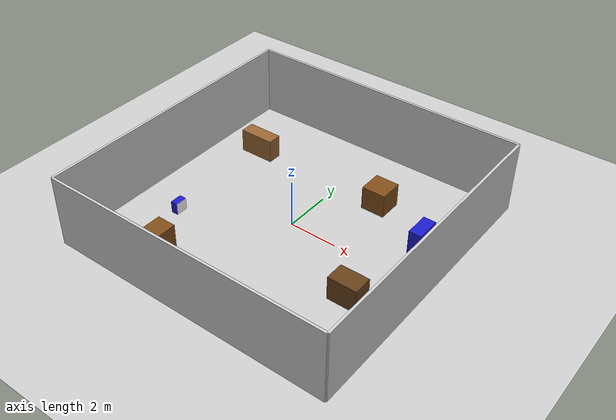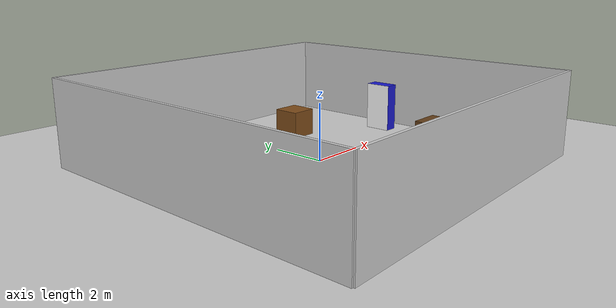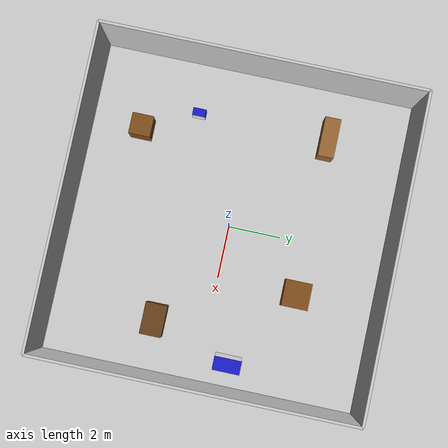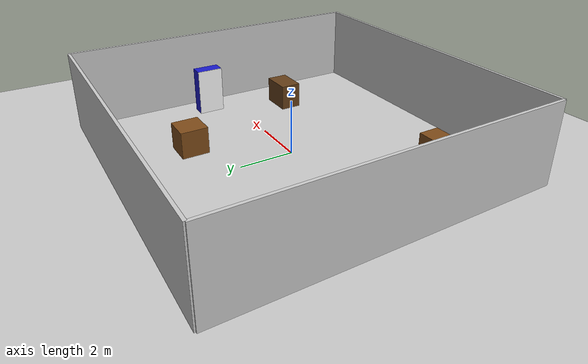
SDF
<?xml version="1.0"?>
<sdf version="1.6">
  <world name="default">

    <plugin
      filename="gz-sim-physics-system"
      name="gz::sim::systems::Physics">
    </plugin>
    <plugin
      filename="gz-sim-user-commands-system"
      name="gz::sim::systems::UserCommands">
    </plugin>
    <plugin
      filename="gz-sim-scene-broadcaster-system"
      name="gz::sim::systems::SceneBroadcaster">
    </plugin>
    <plugin
      filename="gz-sim-sensors-system"
      name="gz::sim::systems::Sensors">
      <render_engine>ogre2</render_engine>
    </plugin>
    <plugin
      filename="gz-sim-imu-system"
      name="gz::sim::systems::Imu">
    </plugin>

    <include>
      <uri>
        https://fuel.gazebosim.org/1.0/OpenRobotics/models/Ground Plane
      </uri>
    </include>

    <include>
      <uri>
        https://fuel.gazebosim.org/1.0/OpenRobotics/models/Sun
      </uri>
    </include>
    <gui fullscreen='0'>
      <camera name='user_camera'>
        <pose frame=''>0.319654 -0.235002 9.29441 0 1.5138 0.009599</pose>
        <view_controller>orbit</view_controller>
        <projection_type>perspective</projection_type>
      </camera>
      <plugin filename="MinimalScene" name="3D View">
        <gz-gui>
          <title>3D View</title>
          <property type="bool" key="showTitleBar">false</property>
          <property type="string" key="state">docked</property>
        </gz-gui>

        <engine>ogre2</engine>
        <scene>scene</scene>
        <ambient_light>0.4 0.4 0.4</ambient_light>
        <background_color>0.8 0.8 0.8</background_color>
        <camera_pose>0.319654 -0.235002 9.29441 0 1.5138 0.009599</camera_pose>
      </plugin>

      <plugin filename="EntityContextMenuPlugin" name="Entity context menu">
        <gz-gui>
          <property key="state" type="string">floating</property>
          <property key="width" type="double">5</property>
          <property key="height" type="double">5</property>
          <property key="showTitleBar" type="bool">false</property>
        </gz-gui>
      </plugin>
      <plugin filename="GzSceneManager" name="Scene Manager">
        <gz-gui>
          <property key="resizable" type="bool">false</property>
          <property key="width" type="double">5</property>
          <property key="height" type="double">5</property>
          <property key="state" type="string">floating</property>
          <property key="showTitleBar" type="bool">false</property>
        </gz-gui>
      </plugin>
      <plugin filename="InteractiveViewControl" name="Interactive view control">
        <gz-gui>
          <property key="resizable" type="bool">false</property>
          <property key="width" type="double">5</property>
          <property key="height" type="double">5</property>
          <property key="state" type="string">floating</property>
          <property key="showTitleBar" type="bool">false</property>
        </gz-gui>
      </plugin>
      <plugin filename="CameraTracking" name="Camera Tracking">
        <gz-gui>
          <property key="resizable" type="bool">false</property>
          <property key="width" type="double">5</property>
          <property key="height" type="double">5</property>
          <property key="state" type="string">floating</property>
          <property key="showTitleBar" type="bool">false</property>
        </gz-gui>
      </plugin>
      <plugin filename="MarkerManager" name="Marker manager">
        <gz-gui>
          <property key="resizable" type="bool">false</property>
          <property key="width" type="double">5</property>
          <property key="height" type="double">5</property>
          <property key="state" type="string">floating</property>
          <property key="showTitleBar" type="bool">false</property>
        </gz-gui>
      </plugin>
      <plugin filename="SelectEntities" name="Select Entities">
        <gz-gui>
          <property key="resizable" type="bool">false</property>
          <property key="width" type="double">5</property>
          <property key="height" type="double">5</property>
          <property key="state" type="string">floating</property>
          <property key="showTitleBar" type="bool">false</property>
        </gz-gui>
      </plugin>

      <plugin filename="Spawn" name="Spawn Entities">
        <gz-gui>
          <property key="resizable" type="bool">false</property>
          <property key="width" type="double">5</property>
          <property key="height" type="double">5</property>
          <property key="state" type="string">floating</property>
          <property key="showTitleBar" type="bool">false</property>
        </gz-gui>
      </plugin>

      <plugin filename="VisualizationCapabilities" name="Visualization Capabilities">
        <gz-gui>
          <property key="resizable" type="bool">false</property>
          <property key="width" type="double">5</property>
          <property key="height" type="double">5</property>
          <property key="state" type="string">floating</property>
          <property key="showTitleBar" type="bool">false</property>
        </gz-gui>
      </plugin>

      <!-- World control -->
      <plugin filename="WorldControl" name="World control">
        <gz-gui>
          <title>World control</title>
          <property type="bool" key="showTitleBar">false</property>
          <property type="bool" key="resizable">false</property>
          <property type="double" key="height">72</property>
          <property type="double" key="z">1</property>

          <property type="string" key="state">floating</property>
          <anchors target="3D View">
            <line own="left" target="left"/>
            <line own="bottom" target="bottom"/>
          </anchors>
        </gz-gui>

        <play_pause>true</play_pause>
        <step>true</step>
        <start_paused>true</start_paused>
        <use_event>true</use_event>

      </plugin>

      <!-- World statistics -->
      <plugin filename="WorldStats" name="World stats">
        <gz-gui>
          <title>World stats</title>
          <property type="bool" key="showTitleBar">false</property>
          <property type="bool" key="resizable">false</property>
          <property type="double" key="height">110</property>
          <property type="double" key="width">290</property>
          <property type="double" key="z">1</property>

          <property type="string" key="state">floating</property>
          <anchors target="3D View">
            <line own="right" target="right"/>
            <line own="bottom" target="bottom"/>
          </anchors>
        </gz-gui>

        <sim_time>true</sim_time>
        <real_time>true</real_time>
        <real_time_factor>true</real_time_factor>
        <iterations>true</iterations>
      </plugin>

      <!-- Insert simple shapes -->
      <plugin filename="Shapes" name="Shapes">
        <gz-gui>
          <property key="resizable" type="bool">false</property>
          <property key="x" type="double">0</property>
          <property key="y" type="double">0</property>
          <property key="width" type="double">250</property>
          <property key="height" type="double">50</property>
          <property key="state" type="string">floating</property>
          <property key="showTitleBar" type="bool">false</property>
          <property key="cardBackground" type="string">#666666</property>
        </gz-gui>
      </plugin>

      <!-- Insert lights -->
      <plugin filename="Lights" name="Lights">
        <gz-gui>
          <property key="resizable" type="bool">false</property>
          <property key="x" type="double">250</property>
          <property key="y" type="double">0</property>
          <property key="width" type="double">150</property>
          <property key="height" type="double">50</property>
          <property key="state" type="string">floating</property>
          <property key="showTitleBar" type="bool">false</property>
          <property key="cardBackground" type="string">#666666</property>
        </gz-gui>
      </plugin>

      <!-- Translate / rotate -->
      <plugin filename="TransformControl" name="Transform control">
        <gz-gui>
          <property key="resizable" type="bool">false</property>
          <property key="x" type="double">0</property>
          <property key="y" type="double">50</property>
          <property key="width" type="double">250</property>
          <property key="height" type="double">50</property>
          <property key="state" type="string">floating</property>
          <property key="showTitleBar" type="bool">false</property>
          <property key="cardBackground" type="string">#777777</property>
        </gz-gui>
      </plugin>

      <!-- Screenshot -->
      <plugin filename="Screenshot" name="Screenshot">
        <gz-gui>
          <property key="resizable" type="bool">false</property>
          <property key="x" type="double">250</property>
          <property key="y" type="double">50</property>
          <property key="width" type="double">50</property>
          <property key="height" type="double">50</property>
          <property key="state" type="string">floating</property>
          <property key="showTitleBar" type="bool">false</property>
          <property key="cardBackground" type="string">#777777</property>
        </gz-gui>
      </plugin>

      <!-- Copy/Paste -->
      <plugin filename="CopyPaste" name="CopyPaste">
        <gz-gui>
          <property key="resizable" type="bool">false</property>
          <property key="x" type="double">300</property>
          <property key="y" type="double">50</property>
          <property key="width" type="double">100</property>
          <property key="height" type="double">50</property>
          <property key="state" type="string">floating</property>
          <property key="showTitleBar" type="bool">false</property>
          <property key="cardBackground" type="string">#777777</property>
        </gz-gui>
      </plugin>

      <!-- Inspector -->
      <plugin filename="ComponentInspector" name="Component inspector">
        <gz-gui>
          <property type="bool" key="showTitleBar">false</property>
          <property type="string" key="state">docked</property>
        </gz-gui>
      </plugin>

      <!-- Entity tree -->
      <plugin filename="EntityTree" name="Entity tree">
        <gz-gui>
          <property type="bool" key="showTitleBar">false</property>
          <property type="string" key="state">docked</property>
        </gz-gui>
      </plugin>
    </gui>

    <physics type="ode">
      <real_time_update_rate>1000.0</real_time_update_rate>
      <max_step_size>0.001</max_step_size>
      <real_time_factor>1</real_time_factor>
      <ode>
        <solver>
          <type>quick</type>
          <iters>150</iters>
          <precon_iters>0</precon_iters>
          <sor>1.400000</sor>
          <use_dynamic_moi_rescaling>1</use_dynamic_moi_rescaling>
        </solver>
        <constraints>
          <cfm>0.00001</cfm>
          <erp>0.2</erp>
          <contact_max_correcting_vel>2000.000000</contact_max_correcting_vel>
          <contact_surface_layer>0.01000</contact_surface_layer>
        </constraints>
      </ode>
    </physics>
    <model name='room_walls'>
      <static>1</static>
      <link name='wall_1'>
        <pose>0 6 1.5 0 0 0</pose>
        <collision name='collision'>
          <geometry>
            <box>
              <size>12 0.1 3</size>
            </box>
          </geometry>
        </collision>
        <visual name='visual'>
          <geometry>
            <box>
              <size>12 0.1 3</size>
            </box>
          </geometry>
          <material>
            <ambient>0.8 0.8 0.8 1</ambient>
            <diffuse>0.8 0.8 0.8 1</diffuse>
          </material>
        </visual>

      </link>
      <link name='wall_2'>
        <pose>0 -6 1.5 0 0 0</pose>
        <collision name='collision'>
          <geometry>
            <box>
              <size>12 0.1 3</size>
            </box>
          </geometry>
        </collision>
        <visual name='visual'>
          <geometry>
            <box>
              <size>12 0.1 3</size>
            </box>
          </geometry>
          <material>
            <ambient>0.8 0.8 0.8 1</ambient>
            <diffuse>0.8 0.8 0.8 1</diffuse>
          </material>
        </visual>
      </link>
      <link name='wall_3'>
        <pose>6 0 1.5 0 0 0</pose>
        <collision name='collision'>
          <geometry>
            <box>
              <size>0.1 12 3</size>
            </box>
          </geometry>
        </collision>
        <visual name='visual'>
          <geometry>
            <box>
              <size>0.1 12 3</size>
            </box>
          </geometry>
          <material>
            <ambient>0.8 0.8 0.8 1</ambient>
            <diffuse>0.8 0.8 0.8 1</diffuse>
          </material>
        </visual>
      </link>
      <link name='wall_4'>
        <pose>-6 0 1.5 0 0 0</pose>
        <collision name='collision'>
          <geometry>
            <box>
              <size>0.1 12 3</size>
            </box>
          </geometry>
        </collision>
        <visual name='visual'>
          <geometry>
            <box>
              <size>0.1 12 3</size>
            </box>
          </geometry>
          <material>
            <ambient>0.8 0.8 0.8 1</ambient>
            <diffuse>0.8 0.8 0.8 1</diffuse>
          </material>
        </visual>
      </link>
    </model>

    <model name='table_box_1'>
      <pose>2 3 0.5 0 0 0</pose>
      <static>1</static>
      <link name='link'>
        <collision name='collision'>
          <geometry>
            <box>
              <size>1 1 1</size>
            </box>
          </geometry>
        </collision>
        <visual name='visual'>
          <geometry>
            <box>
              <size>1 1 1</size>
            </box>
          </geometry>
          <material>
            <ambient>0.5 0.3 0.1 1</ambient>
            <diffuse>0.5 0.3 0.1 1</diffuse>
          </material>
        </visual>
      </link>
    </model>

    <model name='table_box_2'>
      <pose>-3 -4 0.5 0 0 0</pose>
      <static>1</static>
      <link name='link'>
        <collision name='collision'>
          <geometry>
            <box>
              <size>0.8 0.8 1</size>
            </box>
          </geometry>
        </collision>
        <visual name='visual'>
          <geometry>
            <box>
              <size>0.8 0.8 1</size>
            </box>
          </geometry>
          <material>
            <ambient>0.5 0.3 0.1 1</ambient>
            <diffuse>0.5 0.3 0.1 1</diffuse>
          </material>
        </visual>
      </link>
    </model>

    <model name='table_box_3'>
      <pose>4 -2 0.5 0 0 0</pose>
      <static>1</static>
      <link name='link'>
        <collision name='collision'>
          <geometry>
            <box>
              <size>1.2 0.8 1</size>
            </box>
          </geometry>
        </collision>
        <visual name='visual'>
          <geometry>
            <box>
              <size>1.2 0.8 1</size>
            </box>
          </geometry>
          <material>
            <ambient>0.4 0.25 0.1 1</ambient>
            <diffuse>0.4 0.25 0.1 1</diffuse>
          </material>
        </visual>
      </link>
    </model>

    <model name='table_box_4'>
      <pose>-4 3 0.5 0 0 0</pose>
      <static>1</static>
      <link name='link'>
        <collision name='collision'>
          <geometry>
            <box>
              <size>1.5 0.6 1</size>
            </box>
          </geometry>
        </collision>
        <visual name='visual'>
          <geometry>
            <box>
              <size>1.5 0.6 1</size>
            </box>
          </geometry>
          <material>
            <ambient>0.6 0.4 0.2 1</ambient>
            <diffuse>0.6 0.4 0.2 1</diffuse>
          </material>
        </visual>
      </link>
    </model>

    <model name='tom'>
      <pose>5 1 0.9 0 0 0</pose>
      <static>1</static>
      <link name='link'>
        <collision name='collision'>
          <geometry>
            <box>
              <size>0.5 1.0 1.8</size>
            </box>
          </geometry>
        </collision>
        <visual name='visual'>
          <geometry>
            <box>
              <size>0.5 1.0 1.8</size>
            </box>
          </geometry>
          <material>
            <ambient>0.1 0.1 0.8 1</ambient>
            <diffuse>0.1 0.1 0.8 1</diffuse>
          </material>
        </visual>
        <visual name='visual_tom_face'>
          <pose>-0.251 0 0 0 0 0</pose>
          <geometry>
            <box>
              <size>0.001 1.0 1.8</size>
            </box>
          </geometry>
          <material>
            <ambient>1 1 1 1</ambient>
            <diffuse>1 1 1 1</diffuse>
            <specular>0.1 0.1 0.1 1</specular>
            <pbr>
              <metal>
                <albedo_map>tom.jpg</albedo_map>
              </metal>
            </pbr>
          </material>
        </visual>
      </link>
    </model>

    <model name='poubelle_cube'>
      <pose>-4 -2 0.25 0 0 0</pose>
      <static>1</static>
      <link name='link'>
        <collision name='collision'>
          <geometry>
            <box>
              <size>0.3 0.5 0.5</size>
            </box>
          </geometry>
        </collision>
        <visual name='visual'>
          <geometry>
            <box>
              <size>0.3 0.5 0.5</size>
            </box>
          </geometry>
          <material>
            <ambient>0.1 0.1 0.8 1</ambient>
            <diffuse>0.1 0.1 0.8 1</diffuse>
          </material>
        </visual>
        <visual name='visual_poubelle_face'>
          <pose>0.151 0 0 0 0 0</pose>
          <geometry>
            <box>
              <size>0.001 0.5 0.5</size>
            </box>
          </geometry>
          <material>
            <ambient>1 1 1 1</ambient>
            <diffuse>1 1 1 1</diffuse>
            <specular>0.1 0.1 0.1 1</specular>
            <pbr>
              <metal>
                <albedo_map>poubelle.png</albedo_map>
              </metal>
            </pbr>
          </material>
        </visual>

      </link>
    </model>
  </world>
</sdf>
